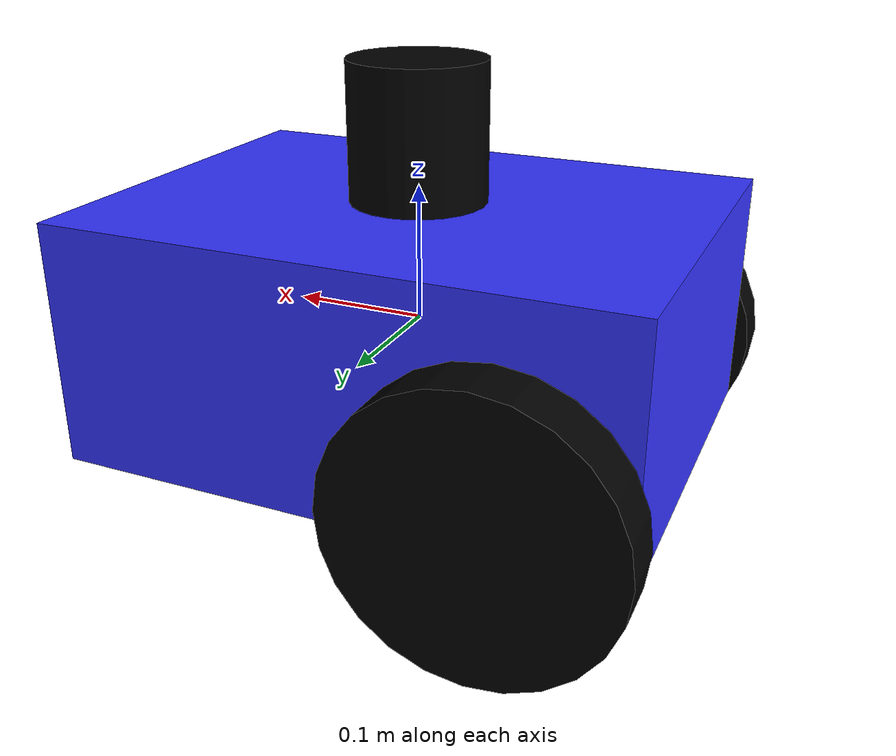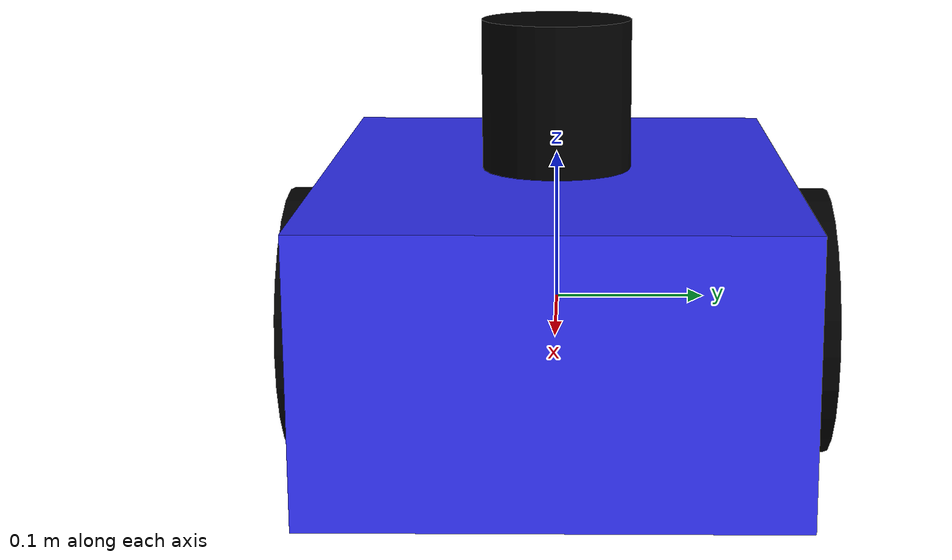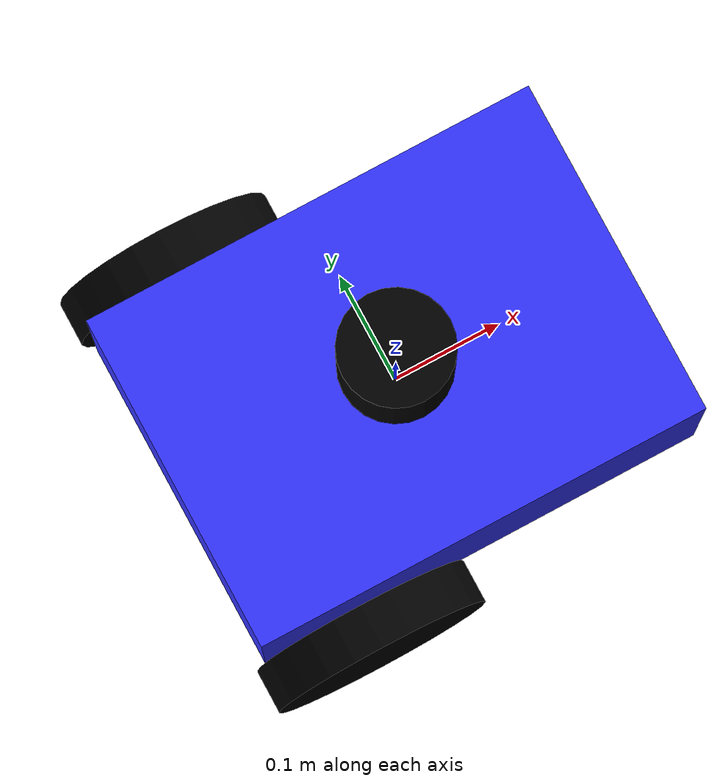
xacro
<?xml version="1.0"?>
<robot xmlns:xacro="http://www.ros.org/wiki/xacro" name="smartmbot">

  <!-- Robot parameters -->
  <xacro:property name="base_width" value="0.31"/>
  <xacro:property name="base_length" value="0.42"/>
  <xacro:property name="base_height" value="0.18"/>

  <xacro:property name="wheel_radius" value="0.10"/>
  <xacro:property name="wheel_width" value="0.04"/>
  <xacro:property name="wheel_ygap" value="0.025"/>
  <xacro:property name="wheel_zoff" value="0.05"/>
  <xacro:property name="wheel_xoff" value="0.12"/>

  <xacro:property name="caster_xoff" value="0.14"/>

  <!-- Define materials -->
  <material name="blue">
    <color rgba="0.2 0.2 1 1"/>
  </material>

  <material name="black">
    <color rgba="0.0 0.0 0.0 1"/>
  </material>

  <material name="white">
    <color rgba="1.0 1.0 1.0 1"/>
  </material>

  <!-- Robot base -->
  <link name="base_link">
    <visual>
      <geometry>
        <box size="${base_length} ${base_width} ${base_height}"/>
      </geometry>
      <material name="blue"/>
    </visual>
    <collision>
      <geometry>
        <box size="${base_length} ${base_width} ${base_height}"/>
      </geometry>
    </collision>
    <inertial>
      <mass value="10"/>
      <inertia ixx="0.4" ixy="0.0" ixz="0.0" iyy="0.4" iyz="0.0" izz="0.2"/>
    </inertial>
  </link>

  <!-- Left wheel -->
  <joint name="left_wheel_joint" type="continuous">
    <parent link="base_link"/>
    <child link="left_wheel"/>
    <origin xyz="${-wheel_xoff} ${base_width/2+wheel_ygap} ${-wheel_zoff}" rpy="${-pi/2} 0 0"/>
    <axis xyz="0 0 1"/>
  </joint>

  <link name="left_wheel">
    <visual>
      <geometry>
        <cylinder radius="${wheel_radius}" length="${wheel_width}"/>
      </geometry>
      <material name="black"/>
    </visual>
    <collision>
      <geometry>
        <cylinder radius="${wheel_radius}" length="${wheel_width}"/>
      </geometry>
    </collision>
    <inertial>
      <mass value="1"/>
      <inertia ixx="0.1" ixy="0.0" ixz="0.0" iyy="0.1" iyz="0.0" izz="0.1"/>
    </inertial>
  </link>

  <!-- Right wheel -->
  <joint name="right_wheel_joint" type="continuous">
    <parent link="base_link"/>
    <child link="right_wheel"/>
    <origin xyz="${-wheel_xoff} ${-(base_width/2+wheel_ygap)} ${-wheel_zoff}" rpy="${-pi/2} 0 0"/>
    <axis xyz="0 0 1"/>
  </joint>

  <link name="right_wheel">
    <visual>
      <geometry>
        <cylinder radius="${wheel_radius}" length="${wheel_width}"/>
      </geometry>
      <material name="black"/>
    </visual>
    <collision>
      <geometry>
        <cylinder radius="${wheel_radius}" length="${wheel_width}"/>
      </geometry>
    </collision>
    <inertial>
      <mass value="1"/>
      <inertia ixx="0.1" ixy="0.0" ixz="0.0" iyy="0.1" iyz="0.0" izz="0.1"/>
    </inertial>
  </link>

  <!-- Caster wheel -->
  <joint name="caster_joint" type="fixed">
    <parent link="base_link"/>
    <child link="caster"/>
    <origin xyz="${caster_xoff} 0.0 ${-wheel_zoff}" rpy="0 0 0"/>
  </joint>

  <link name="caster">
    <visual>
      <geometry>
        <sphere radius="${wheel_radius/2}"/>
      </geometry>
      <material name="white"/>
    </visual>
    <collision>
      <geometry>
        <sphere radius="${wheel_radius/2}"/>
      </geometry>
    </collision>
    <inertial>
      <mass value="0.5"/>
      <inertia ixx="0.1" ixy="0.0" ixz="0.0" iyy="0.1" iyz="0.0" izz="0.1"/>
    </inertial>
  </link>

  <!-- Lidar -->
  <joint name="lidar_joint" type="fixed">
    <parent link="base_link"/>
    <child link="lidar_link"/>
    <origin xyz="0 0 ${base_height/2 + 0.05}" rpy="0 0 0"/>
  </joint>

  <link name="lidar_link">
    <visual>
      <geometry>
        <cylinder radius="0.05" length="0.1"/>
      </geometry>
      <material name="black"/>
    </visual>
    <collision>
      <geometry>
        <cylinder radius="0.05" length="0.1"/>
      </geometry>
    </collision>
    <inertial>
      <mass value="0.2"/>
      <inertia ixx="0.01" ixy="0.0" ixz="0.0" iyy="0.01" iyz="0.0" izz="0.01"/>
    </inertial>
  </link>

  <!-- Gazebo plugins -->
  <gazebo>
    <plugin filename="gz-sim-diff-drive-system" name="gz::sim::systems::DiffDrive">
      <left_joint>left_wheel_joint</left_joint>
      <right_joint>right_wheel_joint</right_joint>
      <wheel_separation>${base_width + 2*wheel_ygap}</wheel_separation>
      <wheel_radius>${wheel_radius}</wheel_radius>
      <odom_publish_frequency>1</odom_publish_frequency>
      <topic>cmd_vel</topic>
    </plugin>

    <plugin filename="gz-sim-joint-state-publisher-system" name="gz::sim::systems::JointStatePublisher">
    </plugin>
  </gazebo>

  <!-- Lidar sensor -->
  <gazebo reference="lidar_link">
    <sensor name="lidar" type="gpu_lidar">
      <topic>scan</topic>
      <update_rate>10</update_rate>
      <lidar>
        <scan>
          <horizontal>
            <samples>360</samples>
            <resolution>1</resolution>
            <min_angle>-3.14159</min_angle>
            <max_angle>3.14159</max_angle>
          </horizontal>
          <vertical>
            <samples>1</samples>
            <resolution>1</resolution>
            <min_angle>0</min_angle>
            <max_angle>0</max_angle>
          </vertical>
        </scan>
        <range>
          <min>0.1</min>
          <max>30.0</max>
          <resolution>0.01</resolution>
        </range>
      </lidar>
      <alwaysOn>1</alwaysOn>
      <visualize>true</visualize>
    </sensor>
  </gazebo>

</robot>
